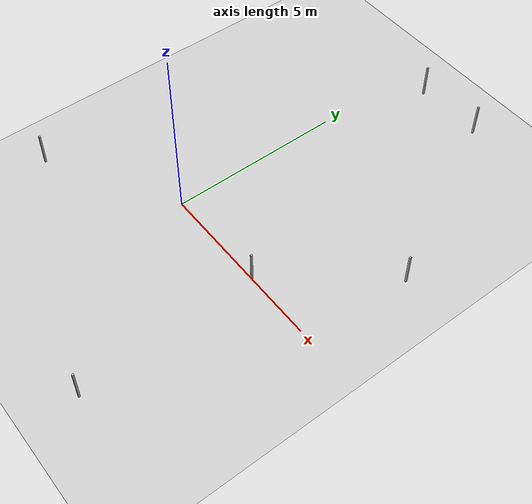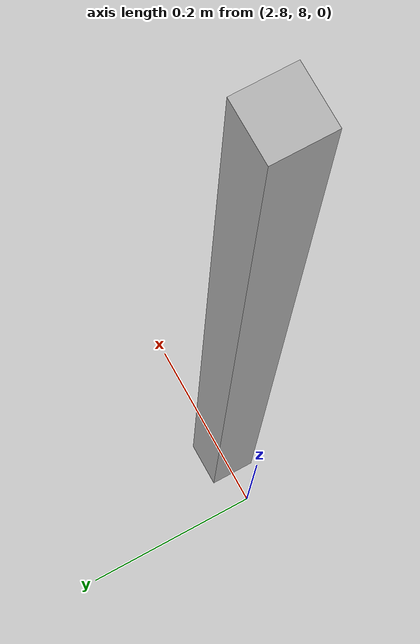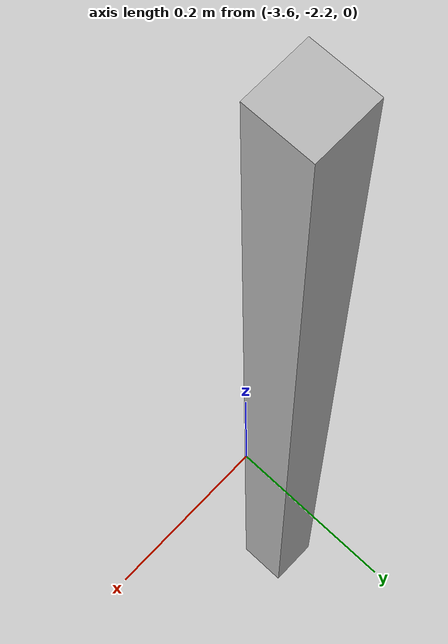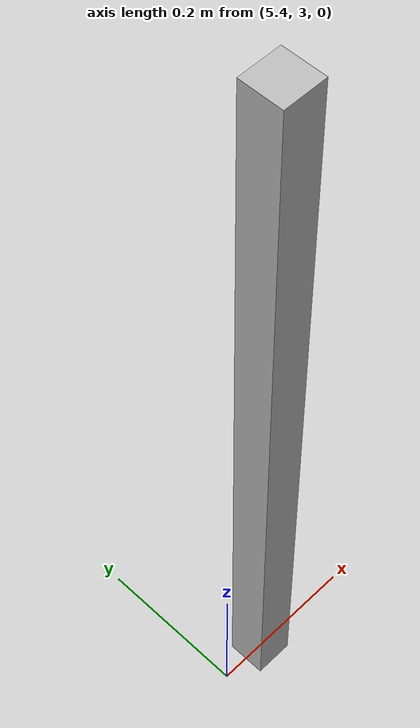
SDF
<?xml version="1.0" ?>

<sdf version="1.5">
	<world name="default">
		<!-- A global light source -->
		<include>
			<uri>model://sun</uri>
		</include>

		<!-- A ground plane -->
		<include>
			<uri>model://ground_plane</uri>
		</include>

		<!-- Posts aruco tags-->
		<model name="aruco_tags">
			<link name="poste_start">
				<pose>3.06 0 0.5 0 0 0</pose>
				<collision name="collision">
					<geometry>
						<box>
							<size>0.05 0.05 1.0</size>
						</box>
					</geometry>
				</collision>
				<visual name="visual">
					<geometry>
						<box>
							<size>0.05 0.05 1.0</size>
						</box>
					</geometry>
				</visual>
			</link>
			<link name="poste_1">
				<pose>3.255 -5.1 0.5 0 0 0</pose>
				<collision name="collision">
					<geometry>
						<box>
							<size>0.05 0.05 1.0</size>
						</box>
					</geometry>
				</collision>
				<visual name="visual">
					<geometry>
						<box>
							<size>0.05 0.05 1.0</size>
						</box>
					</geometry>
				</visual>
			</link>
			<link name="poste_2">
				<pose>5.46 3 0.5 0 0 0</pose>
				<collision name="collision">
					<geometry>
						<box>
							<size>0.05 0.05 1.0</size>
						</box>
					</geometry>
				</collision>
				<visual name="visual">
					<geometry>
						<box>
							<size>0.05 0.05 1.0</size>
						</box>
					</geometry>
				</visual>
			</link>
			<link name="poste3">
				<pose>-3.545 -2.1 0.5 0 0 0</pose>
				<collision name="collision">
					<geometry>
						<box>
							<size>0.05 0.05 1.0</size>
						</box>
					</geometry>
				</collision>
				<visual name="visual">
					<geometry>
						<box>
							<size>0.05 0.05 1.0</size>
						</box>
					</geometry>
				</visual>
			</link>
			<link name="poste_gate_1">
				<pose>.86 8 0.5 0 0 0</pose>
				<collision name="collision">
					<geometry>
						<box>
							<size>0.05 0.05 1.0</size>
						</box>
					</geometry>
				</collision>
				<visual name="visual">
					<geometry>
						<box>
							<size>0.05 0.05 1.0</size>
						</box>
					</geometry>
				</visual>
			</link>
			<link name="poste_gate_2">
				<pose>2.86 8 0.5 0 0 0</pose>
				<collision name="collision">
					<geometry>
						<box>
							<size>0.05 0.05 1.0</size>
						</box>
					</geometry>
				</collision>
				<visual name="visual">
					<geometry>
						<box>
							<size>0.05 0.05 1.0</size>
						</box>
					</geometry>
				</visual>
			</link>
		</model>

	</world>
</sdf>
